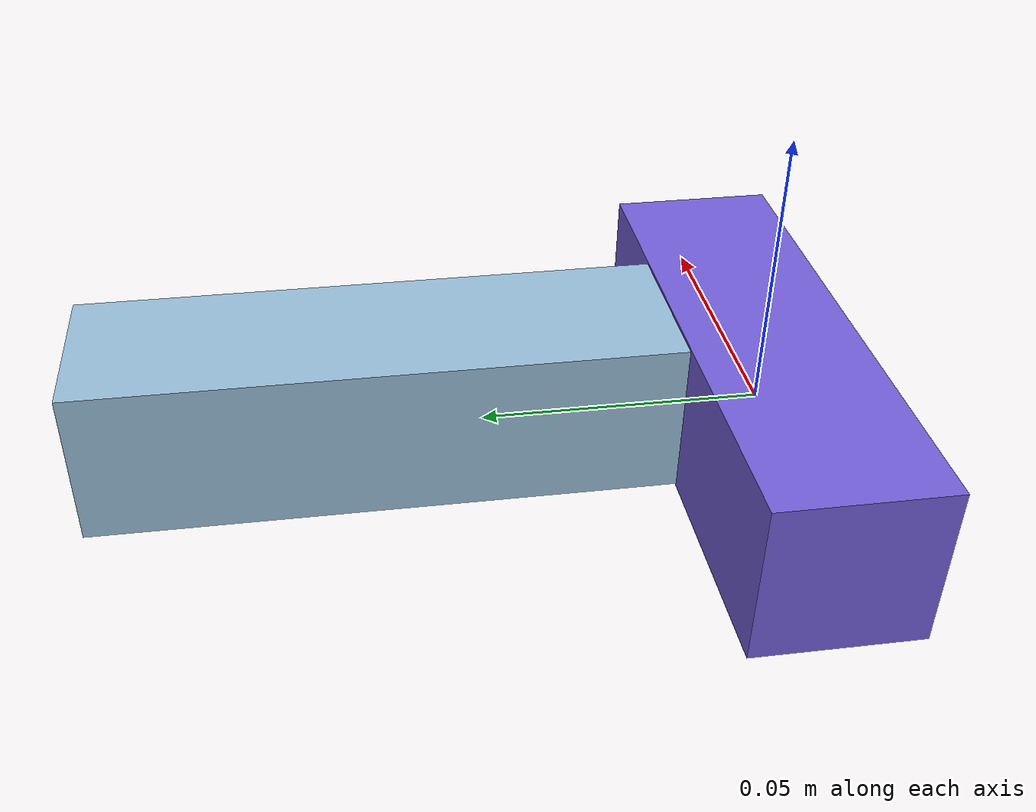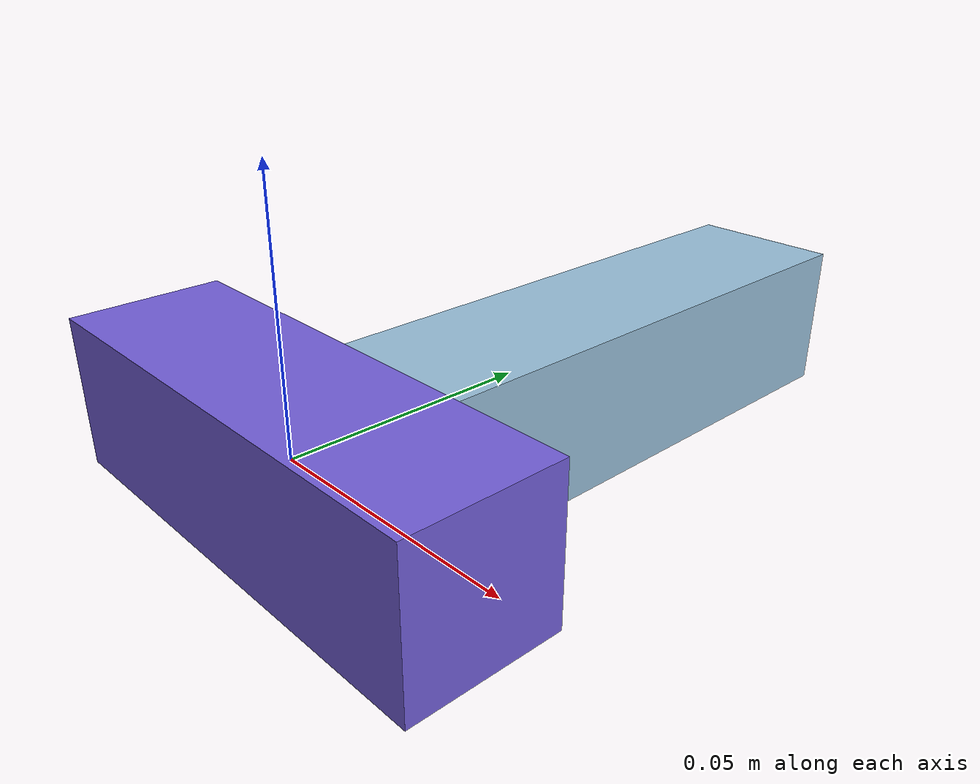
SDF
<sdf version="1.4"><world name="default"><model name="object0"><link name="link1"><pose>0 0 0 0 0 0</pose><inertial><pose>0 0 0 0 0 0</pose><mass>0.05175675544703751</mass><inertia><ixx>7.763513317055627e-06</ixx><ixy>0</ixy><iyy>4.350338902834179e-05</iyy><ixz>0</ixz><iyz>0</iyz><izz>4.350338902834179e-05</izz></inertia></inertial><visual name="link1_visual"><pose>0 0  0 0 0 0</pose><geometry><box><size>0.09584584342043985 0.03 0.03</size></box></geometry><material><diffuse>0.45041785330753087 0.3732205397054723 0.8503394995990226 1</diffuse></material></visual><collision><pose>0 0  0 0 0 0</pose><geometry><box><size>0.09584584342043985 0.03 0.03</size></box></geometry></collision></link><link name="link2"><pose>0.00948660711924032 0.06696529442439567 0 0 0 0</pose><inertial><pose>0 0 0 0 0 0</pose><mass>0.058193634091602546</mass><inertia><ixx>6.0397758707511535e-05</ixx><ixy>0</ixy><iyy>8.442926412790002e-06</iyy><ixz>0</ixz><iyz>0</iyz><izz>6.0683877408461914e-05</izz></inertia></inertial><visual name="link2_visual"><pose>0 0  0 0 0 0</pose><geometry><box><size>0.03 0.10776598905852325 0.028999999999999998</size></box></geometry><material><diffuse>0.5892116303848924 0.7404980840181634 0.843863463015726 1</diffuse></material></visual><collision><pose>0 0  0 0 0 0</pose><geometry><box><size>0.03 0.10776598905852325 0.028999999999999998</size></box></geometry></collision></link><joint name="link_joint_0" type="fixed"><parent>link1</parent><child>link2</child><pose>0 0 0 0 0 0</pose><axis><xyz>0 0 1</xyz></axis></joint></model></world></sdf>
